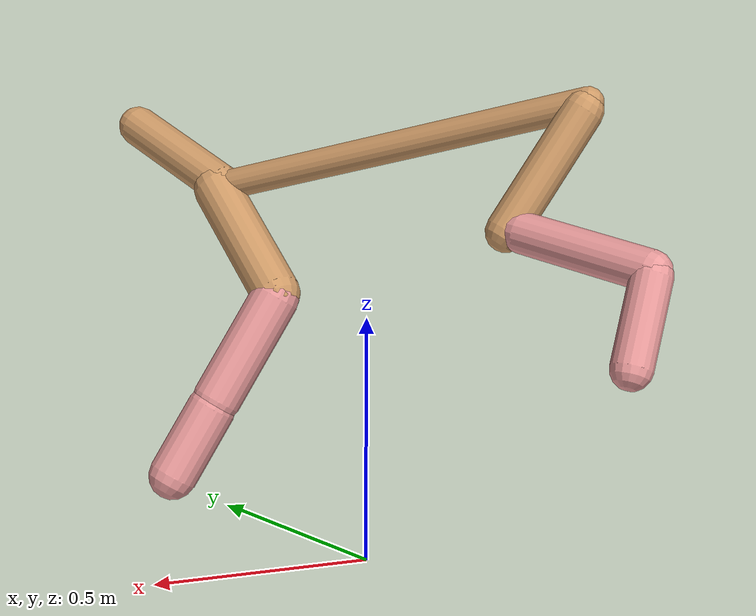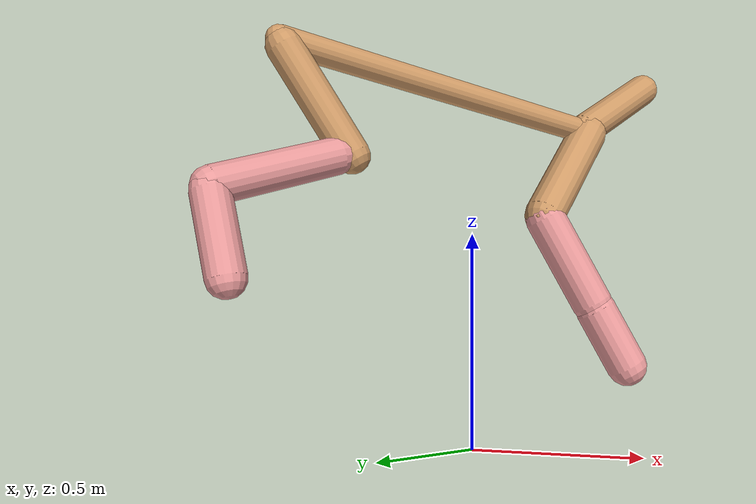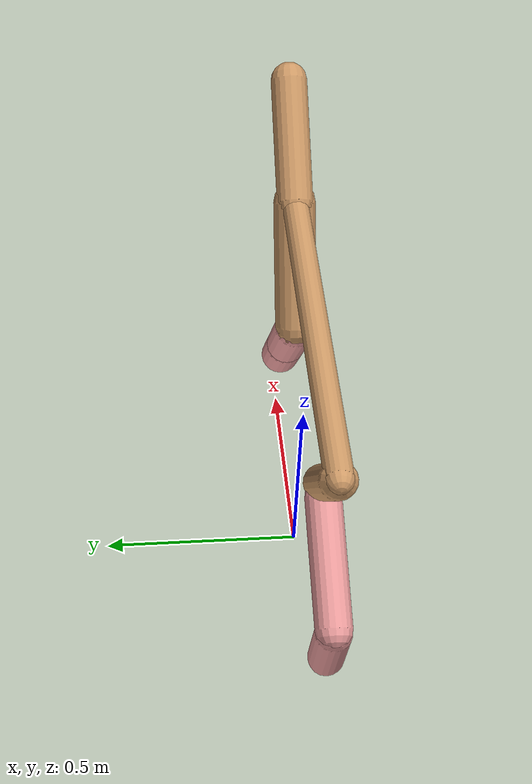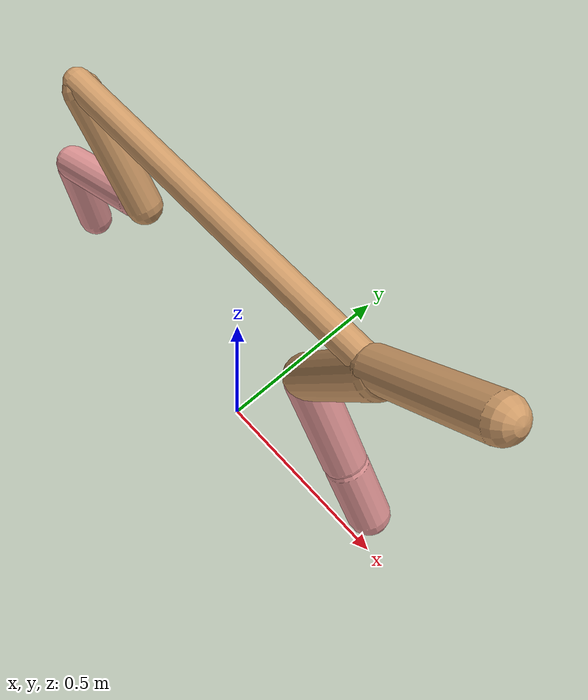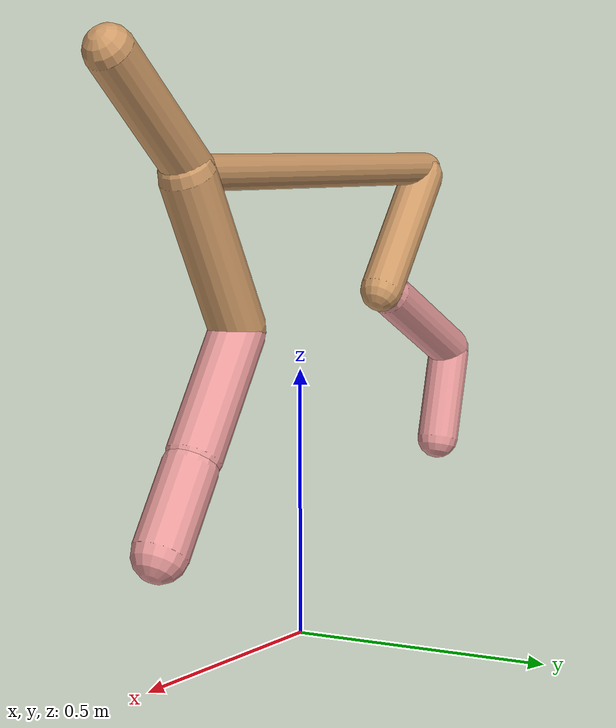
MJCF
<mujoco model="cheetah">
  <compiler angle="radian" coordinate="local" inertiafromgeom="true" settotalmass="14" />
  <default>
    <joint armature=".1" damping=".01" limited="true" solimplimit="0 .8 .03" solreflimit=".02 1" stiffness="8" />
    <geom conaffinity="0" condim="3" contype="1" friction="0.8 .1 .1" rgba="0.8 0.6 .4 1" solimp="0.0 0.8 0.01" solref="0.02 1" />
    <motor ctrllimited="true" ctrlrange="-1 1" />
  </default>
  <size nstack="300000" nuser_geom="1" />
  <option gravity="0 0 -9.81" timestep="0.01" />
  <worldbody>
    <body name="torso" pos="0.0 0.0 0.8688190684628648">
      <joint armature="0" axis="1 0 0" damping="0" limited="false" name="ignorex" pos="0 0 0" stiffness="0" type="slide" />
      <joint armature="0" axis="0 0 1" damping="0" limited="false" name="ignorez" pos="0 0 0" stiffness="0" type="slide" />
      <joint armature="0" axis="0 1 0" damping="0" limited="false" name="ignorey" pos="0 0 0" stiffness="0" type="hinge" />
      <geom fromto="-0.5 0.0 0.0 0.37615769408736344 0.0 0.0" name="torso" size="0.03224177770717642" type="capsule" />
      <geom axisangle="0 1 0 .87" name="head" pos="0.4761576940873634 0.0 0.1" size="0.04435106402157961 0.15" type="capsule" />

      <body name="bthigh" pos="-.5 0 0">
        <joint axis="0 1 0" damping="6" name="bthigh" pos="0 0 0" range="-.52 1.05" stiffness="240" type="hinge" />
        <geom axisangle="0 1 0 -3.8" name="bthigh" pos="0.098174300732587 0.0 -0.1276265909523631" size="0.0423790563135417 0.14200563056346796" type="capsule" />
        <body name="bshin" pos="0.156348601465174 0.0 -0.2452531819047262">
          <joint axis="0 1 0" damping="4.5" name="bshin" pos="0 0 0" range="-.785 .785" stiffness="180" type="hinge" />
          <geom axisangle="0 1 0 -2.03" name="bshin" pos="-0.13722940126489655 0.0 -0.06861470063244827" rgba="0.9 0.6 0.6 1" size="0.0423790563135417 0.14690237644496687" type="capsule" />
          <body name="bfoot" pos="-0.2744588025297931 0.0 -0.13722940126489655">
            <joint axis="0 1 0" damping="3" name="bfoot" pos="0 0 0" range="-.4 .785" stiffness="120" type="hinge" />
            <geom axisangle="0 1 0 -.27" name="bfoot" pos="0.029426440843259228 0.0 -0.09514549205987151" rgba="0.9 0.6 0.6 1" size="0.0423790563135417 0.09205882257217923" type="capsule" />
            <inertial mass="10" />
          </body>
        </body>
      </body>
      <body name="fthigh" pos="0.37615769408736344 0.0 0.0">
        <joint axis="0 1 0" damping="4.5" name="fthigh" pos="0 0 0" range="-1.5 0.8" stiffness="180" type="hinge" />
        <geom axisangle="0 1 0 .52" name="fthigh" pos="-0.08183408362085337 0.0 -0.14028700049289147" size="0.05147453189673628 0.15648633483845295" type="capsule" />
        <body name="fshin" pos="-0.16366816724170674 0.0 -0.28057400098578295">
          <joint axis="0 1 0" damping="3" name="fshin" pos="0 0 0" range="-1.2 1.1" stiffness="120" type="hinge" />
          <geom axisangle="0 1 0 -.6" name="fshin" pos="0.07595946528111298 0.0 -0.10517464423538721" rgba="0.9 0.6 0.6 1" size="0.05147453189673628 0.12471843227726324" type="capsule" />
          <body name="ffoot" pos="0.15191893056222597 0.0 -0.21034928847077441">
            <joint axis="0 1 0" damping="1.5" name="ffoot" pos="0 0 0" range="-3.1 -0.3" stiffness="60" type="hinge" />
            <geom axisangle="0 1 0 -.6" name="ffoot" pos="0.051684428345275854 0.0 -0.0803979996482069" rgba="0.9 0.6 0.6 1" size="0.05147453189673628 0.08236122886234366" type="capsule" />
            <inertial mass="10" />
          </body>
        </body>
      </body>
    </body>
  </worldbody>
  <actuator>
    <motor gear="120" joint="bthigh" name="bthigh" />
    <motor gear="90" joint="bshin" name="bshin" />
    <motor gear="60" joint="bfoot" name="bfoot" />
    <motor gear="120" joint="fthigh" name="fthigh" />
    <motor gear="60" joint="fshin" name="fshin" />
    <motor gear="30" joint="ffoot" name="ffoot" />
  </actuator>
</mujoco>
